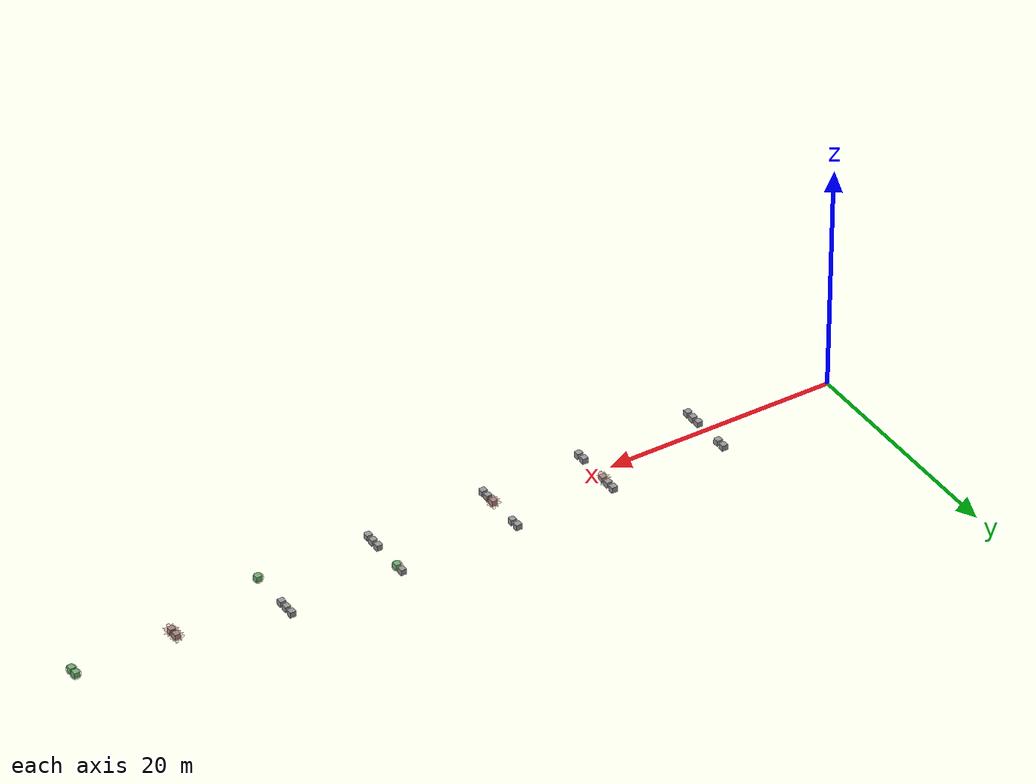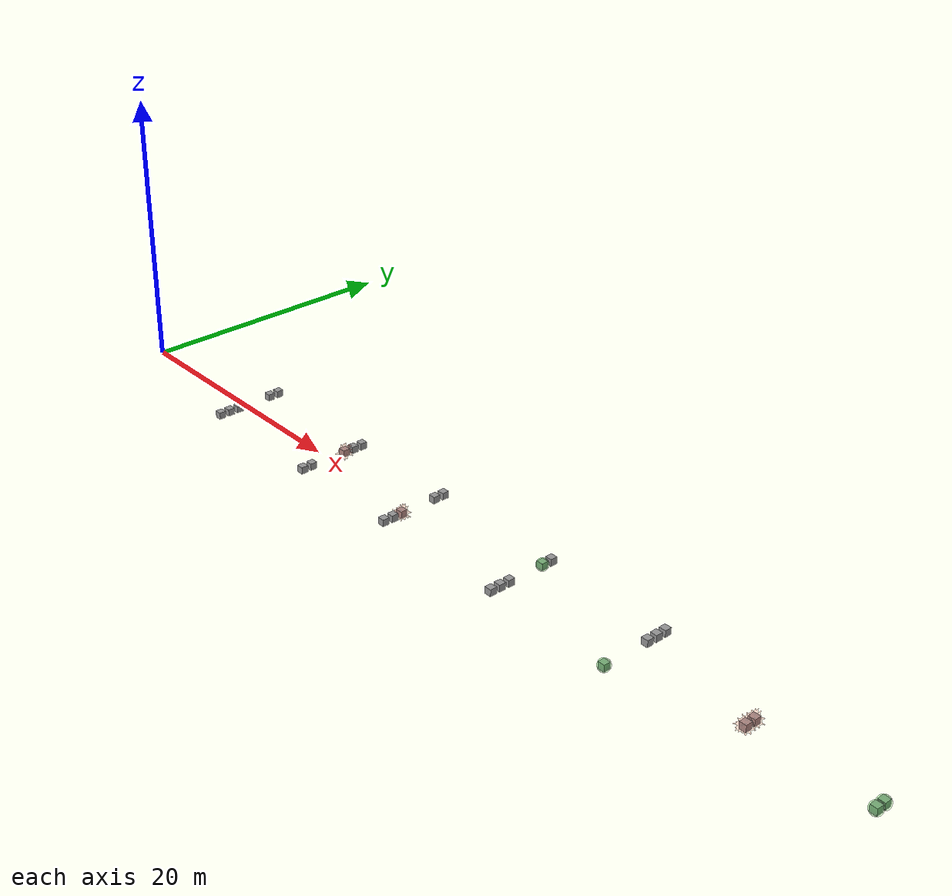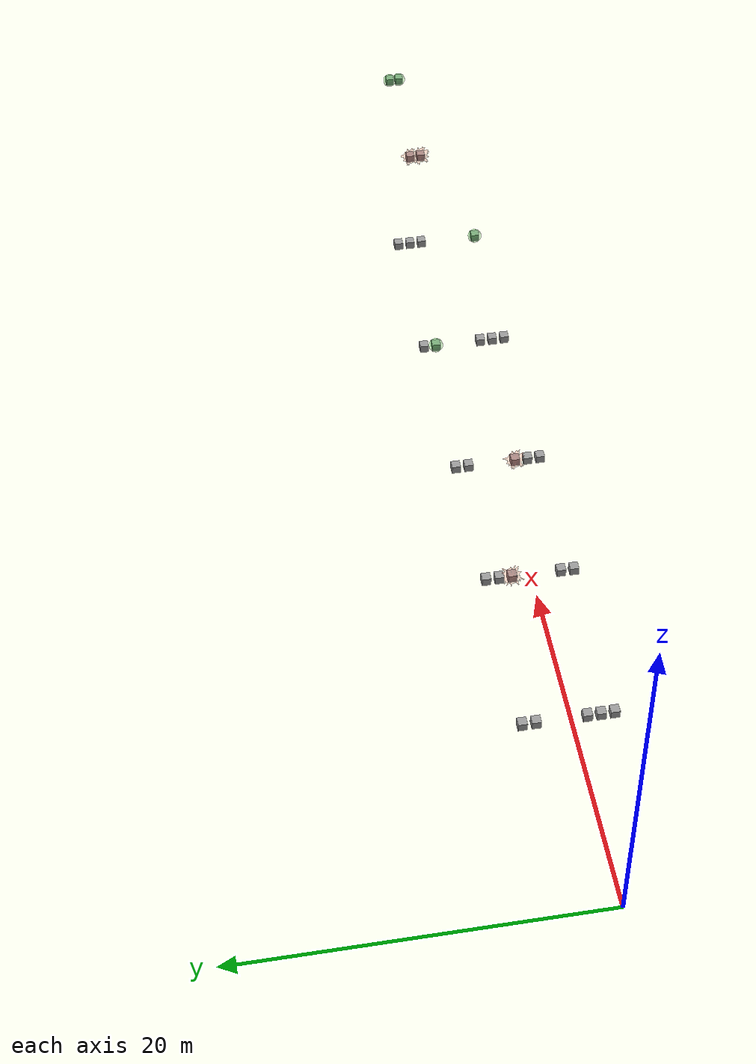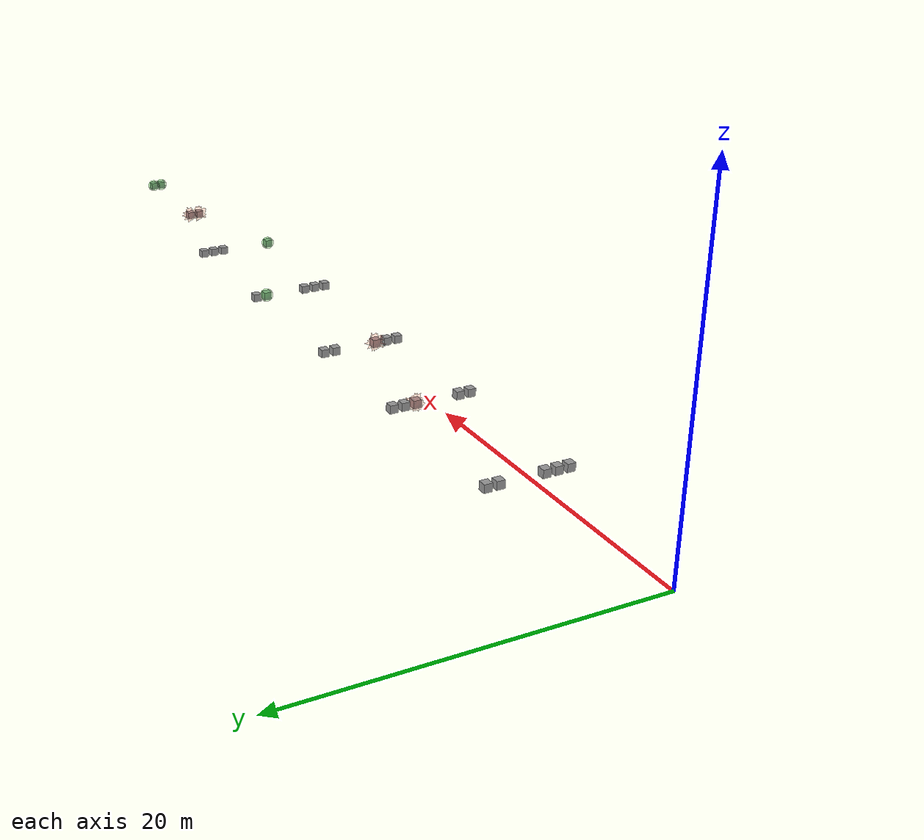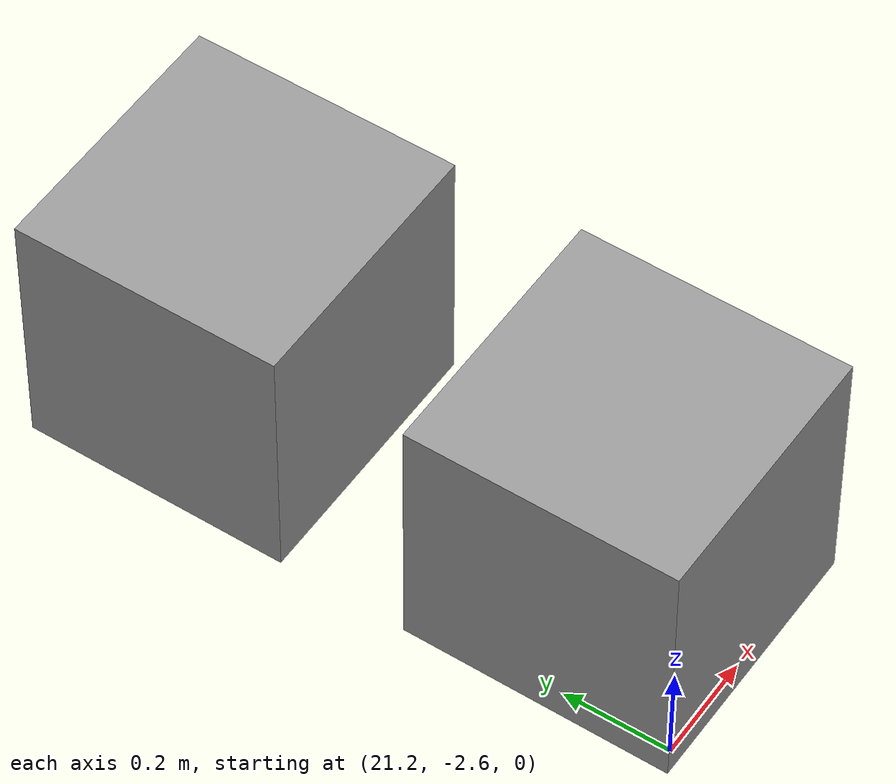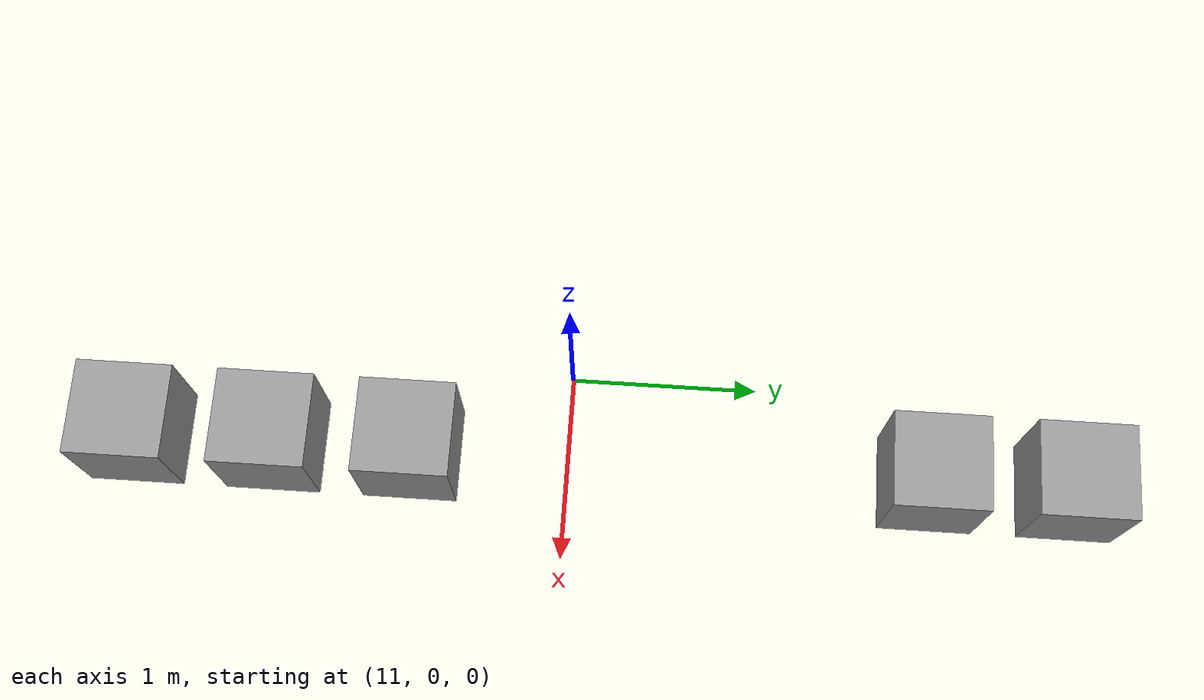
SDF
<sdf version="1.6">
 <world name="default">
  <light name="sun" type="directional">
   <pose>0 0 10 0 -0 0</pose>
   <diffuse>0.8 0.8 0.8 1</diffuse>
   <specular>0.2 0.2 0.2 1</specular>
   <attenuation>
    <range>1000</range>
    <constant>0.9</constant>
    <linear>0.01</linear>
    <quadratic>0.001</quadratic>
   </attenuation>
   <direction>-0.5 0.1 -0.9</direction>
  </light>
  <gravity>0 0 -9.8</gravity>
  <magnetic_field>6e-06 2.3e-05 -4.2e-05</magnetic_field>
  <atmosphere type="adiabatic"/>
  <physics name="default_physics" default="0" type="ode">
   <max_step_size>0.001</max_step_size>
   <real_time_factor>1</real_time_factor>
   <real_time_update_rate>1000</real_time_update_rate>
  </physics>
  <scene><ambient>0.4 0.4 0.4 1</ambient><background>0.9 0.9 0.9 1</background><shadows>1</shadows></scene>
  <spherical_coordinates>
   <surface_model>EARTH_WGS84</surface_model>
   <latitude_deg>0</latitude_deg>
   <longitude_deg>0</longitude_deg>
   <elevation>0</elevation>
   <heading_deg>0</heading_deg>
  </spherical_coordinates>
  <model name="trap_cont_4_n">
   <static>0</static>
   <static>0</static>
   <link name="normal_cue_1::vis_cue_normal">
    <inertial>
     <mass>1</mass>
     <inertia>
      <ixx>0.166667</ixx>
      <ixy>0</ixy>
      <ixz>0</ixz>
      <iyy>0.166667</iyy>
      <iyz>0</iyz>
      <izz>0.166667</izz>
     </inertia>
    </inertial>
    <collision name="collision"><geometry><box><size>0.5 0.5 0.5</size></box></geometry></collision>
    <visual name="box_visual">
     <geometry><box><size>0.5 0.5 0.5</size></box></geometry>
     <material>
      <script><name>Gazebo/Grey</name><uri>file://media/materials/scripts/gazebo.material</uri></script>
     </material>
    </visual>
    <pose>0 -2.48 0.25 0 -0 0</pose>
   </link>
   <static>0</static>
   <link name="normal_cue_2::vis_cue_normal">
    <inertial>
     <mass>1</mass>
     <inertia>
      <ixx>0.166667</ixx>
      <ixy>0</ixy>
      <ixz>0</ixz>
      <iyy>0.166667</iyy>
      <iyz>0</iyz>
      <izz>0.166667</izz>
     </inertia>
    </inertial>
    <collision name="collision"><geometry><box><size>0.5 0.5 0.5</size></box></geometry></collision>
    <visual name="box_visual">
     <geometry><box><size>0.5 0.5 0.5</size></box></geometry>
     <material>
      <script><name>Gazebo/Grey</name><uri>file://media/materials/scripts/gazebo.material</uri></script>
     </material>
    </visual>
    <pose>0 -1.745 0.25 0 -0 0</pose>
   </link>
   <static>0</static>
   <link name="normal_cue_3::vis_cue_normal">
    <inertial>
     <mass>1</mass>
     <inertia>
      <ixx>0.166667</ixx>
      <ixy>0</ixy>
      <ixz>0</ixz>
      <iyy>0.166667</iyy>
      <iyz>0</iyz>
      <izz>0.166667</izz>
     </inertia>
    </inertial>
    <collision name="collision"><geometry><box><size>0.5 0.5 0.5</size></box></geometry></collision>
    <visual name="box_visual">
     <geometry><box><size>0.5 0.5 0.5</size></box></geometry>
     <material>
      <script><name>Gazebo/Grey</name><uri>file://media/materials/scripts/gazebo.material</uri></script>
     </material>
    </visual>
    <pose>0 -1.01 0.25 0 -0 0</pose>
   </link>
   <static>0</static>
   <link name="normal_cue_4::vis_cue_normal">
    <inertial>
     <mass>1</mass>
     <inertia>
      <ixx>0.166667</ixx>
      <ixy>0</ixy>
      <ixz>0</ixz>
      <iyy>0.166667</iyy>
      <iyz>0</iyz>
      <izz>0.166667</izz>
     </inertia>
    </inertial>
    <collision name="collision"><geometry><box><size>0.5 0.5 0.5</size></box></geometry></collision>
    <visual name="box_visual">
     <geometry><box><size>0.5 0.5 0.5</size></box></geometry>
     <material>
      <script><name>Gazebo/Grey</name><uri>file://media/materials/scripts/gazebo.material</uri></script>
     </material>
    </visual>
    <pose>0 1.74 0.25 0 -0 0</pose>
   </link>
   <static>0</static>
   <link name="normal_cue_5::vis_cue_normal">
    <inertial>
     <mass>1</mass>
     <inertia>
      <ixx>0.166667</ixx>
      <ixy>0</ixy>
      <ixz>0</ixz>
      <iyy>0.166667</iyy>
      <iyz>0</iyz>
      <izz>0.166667</izz>
     </inertia>
    </inertial>
    <collision name="collision"><geometry><box><size>0.5 0.5 0.5</size></box></geometry></collision>
    <visual name="box_visual">
     <geometry><box><size>0.5 0.5 0.5</size></box></geometry>
     <material>
      <script><name>Gazebo/Grey</name><uri>file://media/materials/scripts/gazebo.material</uri></script>
     </material>
    </visual>
    <pose>0 2.48 0.25 0 -0 0</pose>
   </link>
   <pose>11.4717 0.179901 1.1e-05 7e-06 -7e-06 0</pose>
  </model>
  <model name="trap_cont_4_r_2">
   <static>0</static>
   <static>0</static>
   <link name="normal_cue_1::vis_cue_normal">
    <inertial>
     <mass>1</mass>
     <inertia>
      <ixx>0.166667</ixx>
      <ixy>0</ixy>
      <ixz>0</ixz>
      <iyy>0.166667</iyy>
      <iyz>0</iyz>
      <izz>0.166667</izz>
     </inertia>
    </inertial>
    <collision name="collision"><geometry><box><size>0.5 0.5 0.5</size></box></geometry></collision>
    <visual name="box_visual">
     <geometry><box><size>0.5 0.5 0.5</size></box></geometry>
     <material>
      <script><name>Gazebo/Grey</name><uri>file://media/materials/scripts/gazebo.material</uri></script>
     </material>
    </visual>
    <pose>0 -2.48 0.25 0 -0 0</pose>
   </link>
   <static>0</static>
   <link name="normal_cue_2::vis_cue_normal">
    <inertial>
     <mass>1</mass>
     <inertia>
      <ixx>0.166667</ixx>
      <ixy>0</ixy>
      <ixz>0</ixz>
      <iyy>0.166667</iyy>
      <iyz>0</iyz>
      <izz>0.166667</izz>
     </inertia>
    </inertial>
    <collision name="collision"><geometry><box><size>0.5 0.5 0.5</size></box></geometry></collision>
    <visual name="box_visual">
     <geometry><box><size>0.5 0.5 0.5</size></box></geometry>
     <material>
      <script><name>Gazebo/Grey</name><uri>file://media/materials/scripts/gazebo.material</uri></script>
     </material>
    </visual>
    <pose>0 -1.745 0.25 0 -0 0</pose>
   </link>
   <static>0</static>
   <link name="repelling_cue_0::vis_cue_repel">
    <inertial>
     <mass>1</mass>
     <inertia>
      <ixx>0.166667</ixx>
      <ixy>0</ixy>
      <ixz>0</ixz>
      <iyy>0.166667</iyy>
      <iyz>0</iyz>
      <izz>0.166667</izz>
     </inertia>
    </inertial>
    <collision name="collision"><geometry><box><size>0.5 0.5 0.5</size></box></geometry></collision>
    <visual name="box_visual">
     <geometry><box><size>0.5 0.5 0.5</size></box></geometry>
     <material>
      <script><name>Gazebo/Grey</name><uri>file://media/materials/scripts/gazebo.material</uri></script>
     </material>
    </visual>
    <visual name="cue_visual">
     <geometry><mesh><uri>model://repelling_cue_2.dae</uri><scale>0.85 0.85 0.85</scale></mesh></geometry>
     <material>
      <ambient>1 0.3 0.2 0.2</ambient>
      <diffuse>1 0.3 0.2 0.2</diffuse>
      <specular>1 0.3 0.2 0.5</specular>
      <emissive>0.5 0 0 0.1</emissive>
     </material>
    </visual>
    <pose>0 -1.01 0.25 0 -0 0</pose>
   </link>
   <static>0</static>
   <link name="normal_cue_3::vis_cue_normal">
    <inertial>
     <mass>1</mass>
     <inertia>
      <ixx>0.166667</ixx>
      <ixy>0</ixy>
      <ixz>0</ixz>
      <iyy>0.166667</iyy>
      <iyz>0</iyz>
      <izz>0.166667</izz>
     </inertia>
    </inertial>
    <collision name="collision"><geometry><box><size>0.5 0.5 0.5</size></box></geometry></collision>
    <visual name="box_visual">
     <geometry><box><size>0.5 0.5 0.5</size></box></geometry>
     <material>
      <script><name>Gazebo/Grey</name><uri>file://media/materials/scripts/gazebo.material</uri></script>
     </material>
    </visual>
    <pose>0 1.74 0.25 0 -0 0</pose>
   </link>
   <static>0</static>
   <link name="normal_cue_4::vis_cue_normal">
    <inertial>
     <mass>1</mass>
     <inertia>
      <ixx>0.166667</ixx>
      <ixy>0</ixy>
      <ixz>0</ixz>
      <iyy>0.166667</iyy>
      <iyz>0</iyz>
      <izz>0.166667</izz>
     </inertia>
    </inertial>
    <collision name="collision"><geometry><box><size>0.5 0.5 0.5</size></box></geometry></collision>
    <visual name="box_visual">
     <geometry><box><size>0.5 0.5 0.5</size></box></geometry>
     <material>
      <script><name>Gazebo/Grey</name><uri>file://media/materials/scripts/gazebo.material</uri></script>
     </material>
    </visual>
    <pose>0 2.48 0.25 0 -0 0</pose>
   </link>
   <pose>21.435 0.10835 1.4e-05 7e-06 -7e-06 3.1328</pose>
  </model>
  <model name="trap_cont_4_r_2_0">
   <static>0</static>
   <static>0</static>
   <link name="normal_cue_1::vis_cue_normal">
    <inertial>
     <mass>1</mass>
     <inertia>
      <ixx>0.166667</ixx>
      <ixy>0</ixy>
      <ixz>0</ixz>
      <iyy>0.166667</iyy>
      <iyz>0</iyz>
      <izz>0.166667</izz>
     </inertia>
    </inertial>
    <collision name="collision"><geometry><box><size>0.5 0.5 0.5</size></box></geometry></collision>
    <visual name="box_visual">
     <geometry><box><size>0.5 0.5 0.5</size></box></geometry>
     <material>
      <script><name>Gazebo/Grey</name><uri>file://media/materials/scripts/gazebo.material</uri></script>
     </material>
    </visual>
    <pose>0 -2.48 0.25 0 -0 0</pose>
   </link>
   <static>0</static>
   <link name="normal_cue_2::vis_cue_normal">
    <inertial>
     <mass>1</mass>
     <inertia>
      <ixx>0.166667</ixx>
      <ixy>0</ixy>
      <ixz>0</ixz>
      <iyy>0.166667</iyy>
      <iyz>0</iyz>
      <izz>0.166667</izz>
     </inertia>
    </inertial>
    <collision name="collision"><geometry><box><size>0.5 0.5 0.5</size></box></geometry></collision>
    <visual name="box_visual">
     <geometry><box><size>0.5 0.5 0.5</size></box></geometry>
     <material>
      <script><name>Gazebo/Grey</name><uri>file://media/materials/scripts/gazebo.material</uri></script>
     </material>
    </visual>
    <pose>0 -1.745 0.25 0 -0 0</pose>
   </link>
   <static>0</static>
   <link name="repelling_cue_0::vis_cue_repel">
    <inertial>
     <mass>1</mass>
     <inertia>
      <ixx>0.166667</ixx>
      <ixy>0</ixy>
      <ixz>0</ixz>
      <iyy>0.166667</iyy>
      <iyz>0</iyz>
      <izz>0.166667</izz>
     </inertia>
    </inertial>
    <collision name="collision"><geometry><box><size>0.5 0.5 0.5</size></box></geometry></collision>
    <visual name="box_visual">
     <geometry><box><size>0.5 0.5 0.5</size></box></geometry>
     <material>
      <script><name>Gazebo/Grey</name><uri>file://media/materials/scripts/gazebo.material</uri></script>
     </material>
    </visual>
    <visual name="cue_visual">
     <geometry><mesh><uri>model://repelling_cue_2.dae</uri><scale>0.85 0.85 0.85</scale></mesh></geometry>
     <material>
      <ambient>1 0.3 0.2 0.2</ambient>
      <diffuse>1 0.3 0.2 0.2</diffuse>
      <specular>1 0.3 0.2 0.5</specular>
      <emissive>0.5 0 0 0.1</emissive>
     </material>
    </visual>
    <pose>0 -1.01 0.25 0 -0 0</pose>
   </link>
   <static>0</static>
   <link name="normal_cue_3::vis_cue_normal">
    <inertial>
     <mass>1</mass>
     <inertia>
      <ixx>0.166667</ixx>
      <ixy>0</ixy>
      <ixz>0</ixz>
      <iyy>0.166667</iyy>
      <iyz>0</iyz>
      <izz>0.166667</izz>
     </inertia>
    </inertial>
    <collision name="collision"><geometry><box><size>0.5 0.5 0.5</size></box></geometry></collision>
    <visual name="box_visual">
     <geometry><box><size>0.5 0.5 0.5</size></box></geometry>
     <material>
      <script><name>Gazebo/Grey</name><uri>file://media/materials/scripts/gazebo.material</uri></script>
     </material>
    </visual>
    <pose>0 1.74 0.25 0 -0 0</pose>
   </link>
   <static>0</static>
   <link name="normal_cue_4::vis_cue_normal">
    <inertial>
     <mass>1</mass>
     <inertia>
      <ixx>0.166667</ixx>
      <ixy>0</ixy>
      <ixz>0</ixz>
      <iyy>0.166667</iyy>
      <iyz>0</iyz>
      <izz>0.166667</izz>
     </inertia>
    </inertial>
    <collision name="collision"><geometry><box><size>0.5 0.5 0.5</size></box></geometry></collision>
    <visual name="box_visual">
     <geometry><box><size>0.5 0.5 0.5</size></box></geometry>
     <material>
      <script><name>Gazebo/Grey</name><uri>file://media/materials/scripts/gazebo.material</uri></script>
     </material>
    </visual>
    <pose>0 2.48 0.25 0 -0 0</pose>
   </link>
   <pose>30.0609 0.167992 1.1e-05 7e-06 -7e-06 0</pose>
  </model>
  <model name="trap_cont_4_a_1">
   <static>0</static>
   <static>0</static>
   <link name="normal_cue_1::vis_cue_normal">
    <inertial>
     <mass>1</mass>
     <inertia>
      <ixx>0.166667</ixx>
      <ixy>0</ixy>
      <ixz>0</ixz>
      <iyy>0.166667</iyy>
      <iyz>0</iyz>
      <izz>0.166667</izz>
     </inertia>
    </inertial>
    <collision name="collision"><geometry><box><size>0.5 0.5 0.5</size></box></geometry></collision>
    <visual name="box_visual">
     <geometry><box><size>0.5 0.5 0.5</size></box></geometry>
     <material>
      <script><name>Gazebo/Grey</name><uri>file://media/materials/scripts/gazebo.material</uri></script>
     </material>
    </visual>
    <pose>0 -2.48 0.25 0 -0 0</pose>
   </link>
   <static>0</static>
   <link name="normal_cue_2::vis_cue_normal">
    <inertial>
     <mass>1</mass>
     <inertia>
      <ixx>0.166667</ixx>
      <ixy>0</ixy>
      <ixz>0</ixz>
      <iyy>0.166667</iyy>
      <iyz>0</iyz>
      <izz>0.166667</izz>
     </inertia>
    </inertial>
    <collision name="collision"><geometry><box><size>0.5 0.5 0.5</size></box></geometry></collision>
    <visual name="box_visual">
     <geometry><box><size>0.5 0.5 0.5</size></box></geometry>
     <material>
      <script><name>Gazebo/Grey</name><uri>file://media/materials/scripts/gazebo.material</uri></script>
     </material>
    </visual>
    <pose>0 -1.745 0.25 0 -0 0</pose>
   </link>
   <static>0</static>
   <link name="normal_cue_3::vis_cue_normal">
    <inertial>
     <mass>1</mass>
     <inertia>
      <ixx>0.166667</ixx>
      <ixy>0</ixy>
      <ixz>0</ixz>
      <iyy>0.166667</iyy>
      <iyz>0</iyz>
      <izz>0.166667</izz>
     </inertia>
    </inertial>
    <collision name="collision"><geometry><box><size>0.5 0.5 0.5</size></box></geometry></collision>
    <visual name="box_visual">
     <geometry><box><size>0.5 0.5 0.5</size></box></geometry>
     <material>
      <script><name>Gazebo/Grey</name><uri>file://media/materials/scripts/gazebo.material</uri></script>
     </material>
    </visual>
    <pose>0 -1.01 0.25 0 -0 0</pose>
   </link>
   <static>0</static>
   <link name="attracting_cue_0::vis_cue_attract">
    <inertial>
     <mass>1</mass>
     <inertia>
      <ixx>0.166667</ixx>
      <ixy>0</ixy>
      <ixz>0</ixz>
      <iyy>0.166667</iyy>
      <iyz>0</iyz>
      <izz>0.166667</izz>
     </inertia>
    </inertial>
    <collision name="collision"><geometry><box><size>0.5 0.5 0.5</size></box></geometry></collision>
    <visual name="box_visual">
     <geometry><box><size>0.5 0.5 0.5</size></box></geometry>
     <material>
      <script><name>Gazebo/Grey</name><uri>file://media/materials/scripts/gazebo.material</uri></script>
     </material>
    </visual>
    <visual name="cue_visual">
     <geometry>
      <mesh><uri>model://vis_cue_attract/meshes/sphere.stl</uri><scale>0.85 0.85 0.85</scale></mesh>
     </geometry>
     <material>
      <ambient>0 1 0 0.15</ambient>
      <diffuse>0 1 0 0.15</diffuse>
      <specular>0 1 0 0.15</specular>
      <emissive>0 0 0 0</emissive>
     </material>
    </visual>
    <pose>0 1.74 0.25 0 -0 0</pose>
   </link>
   <static>0</static>
   <link name="normal_cue_4::vis_cue_normal">
    <inertial>
     <mass>1</mass>
     <inertia>
      <ixx>0.166667</ixx>
      <ixy>0</ixy>
      <ixz>0</ixz>
      <iyy>0.166667</iyy>
      <iyz>0</iyz>
      <izz>0.166667</izz>
     </inertia>
    </inertial>
    <collision name="collision"><geometry><box><size>0.5 0.5 0.5</size></box></geometry></collision>
    <visual name="box_visual">
     <geometry><box><size>0.5 0.5 0.5</size></box></geometry>
     <material>
      <script><name>Gazebo/Grey</name><uri>file://media/materials/scripts/gazebo.material</uri></script>
     </material>
    </visual>
    <pose>0 2.48 0.25 0 -0 0</pose>
   </link>
   <pose>40.2553 0.202155 -2.1e-05 -7e-06 7e-06 0</pose>
  </model>
  <model name="trap_cont_1_attr_m">
   <static>0</static>
   <static>0</static>
   <link name="attracting_cue_0::vis_cue_attract">
    <inertial>
     <mass>1</mass>
     <inertia>
      <ixx>0.166667</ixx>
      <ixy>0</ixy>
      <ixz>0</ixz>
      <iyy>0.166667</iyy>
      <iyz>0</iyz>
      <izz>0.166667</izz>
     </inertia>
    </inertial>
    <collision name="collision"><geometry><box><size>0.5 0.5 0.5</size></box></geometry></collision>
    <visual name="box_visual">
     <geometry><box><size>0.5 0.5 0.5</size></box></geometry>
     <material>
      <script><name>Gazebo/Grey</name><uri>file://media/materials/scripts/gazebo.material</uri></script>
     </material>
    </visual>
    <visual name="cue_visual">
     <geometry>
      <mesh><uri>model://vis_cue_attract/meshes/sphere.stl</uri><scale>0.85 0.85 0.85</scale></mesh>
     </geometry>
     <material>
      <ambient>0 1 0 0.15</ambient>
      <diffuse>0 1 0 0.15</diffuse>
      <specular>0 1 0 0.15</specular>
      <emissive>0 0 0 0</emissive>
     </material>
    </visual>
    <pose>0 -2.48 0.25 0 -0 0</pose>
   </link>
   <static>0</static>
   <link name="normal_cue_0::vis_cue_normal">
    <inertial>
     <mass>1</mass>
     <inertia>
      <ixx>0.166667</ixx>
      <ixy>0</ixy>
      <ixz>0</ixz>
      <iyy>0.166667</iyy>
      <iyz>0</iyz>
      <izz>0.166667</izz>
     </inertia>
    </inertial>
    <collision name="collision"><geometry><box><size>0.5 0.5 0.5</size></box></geometry></collision>
    <visual name="box_visual">
     <geometry><box><size>0.5 0.5 0.5</size></box></geometry>
     <material>
      <script><name>Gazebo/Grey</name><uri>file://media/materials/scripts/gazebo.material</uri></script>
     </material>
    </visual>
    <pose>0 1.01 0.25 0 -0 0</pose>
   </link>
   <static>0</static>
   <link name="normal_cue_1::vis_cue_normal">
    <inertial>
     <mass>1</mass>
     <inertia>
      <ixx>0.166667</ixx>
      <ixy>0</ixy>
      <ixz>0</ixz>
      <iyy>0.166667</iyy>
      <iyz>0</iyz>
      <izz>0.166667</izz>
     </inertia>
    </inertial>
    <collision name="collision"><geometry><box><size>0.5 0.5 0.5</size></box></geometry></collision>
    <visual name="box_visual">
     <geometry><box><size>0.5 0.5 0.5</size></box></geometry>
     <material>
      <script><name>Gazebo/Grey</name><uri>file://media/materials/scripts/gazebo.material</uri></script>
     </material>
    </visual>
    <pose>0 1.745 0.25 0 -0 0</pose>
   </link>
   <static>0</static>
   <link name="normal_cue_2::vis_cue_normal">
    <inertial>
     <mass>1</mass>
     <inertia>
      <ixx>0.166667</ixx>
      <ixy>0</ixy>
      <ixz>0</ixz>
      <iyy>0.166667</iyy>
      <iyz>0</iyz>
      <izz>0.166667</izz>
     </inertia>
    </inertial>
    <collision name="collision"><geometry><box><size>0.5 0.5 0.5</size></box></geometry></collision>
    <visual name="box_visual">
     <geometry><box><size>0.5 0.5 0.5</size></box></geometry>
     <material>
      <script><name>Gazebo/Grey</name><uri>file://media/materials/scripts/gazebo.material</uri></script>
     </material>
    </visual>
    <pose>0 2.48 0.25 0 -0 0</pose>
   </link>
   <pose>49.8096 0.145045 -2.1e-05 -7e-06 7e-06 0</pose>
  </model>
  <model name="vis_cue_repel">
   <static>0</static>
   <pose>58.3645 0.37962 0.249997 -7e-06 7e-06 0</pose>
   <link name="vis_cue_repel">
    <inertial>
     <mass>1</mass>
     <inertia>
      <ixx>0.166667</ixx>
      <ixy>0</ixy>
      <ixz>0</ixz>
      <iyy>0.166667</iyy>
      <iyz>0</iyz>
      <izz>0.166667</izz>
     </inertia>
    </inertial>
    <collision name="collision"><geometry><box><size>0.5 0.5 0.5</size></box></geometry></collision>
    <visual name="box_visual">
     <geometry><box><size>0.5 0.5 0.5</size></box></geometry>
     <material>
      <script><name>Gazebo/Grey</name><uri>file://media/materials/scripts/gazebo.material</uri></script>
     </material>
    </visual>
    <visual name="cue_visual">
     <geometry><mesh><uri>model://repelling_cue_2.dae</uri><scale>0.85 0.85 0.85</scale></mesh></geometry>
     <material>
      <ambient>1 0.3 0.2 0.2</ambient>
      <diffuse>1 0.3 0.2 0.2</diffuse>
      <specular>1 0.3 0.2 0.5</specular>
      <emissive>0.5 0 0 0.1</emissive>
     </material>
    </visual>
   </link>
  </model>
  <model name="vis_cue_repel_0">
   <static>0</static>
   <pose>58.3744 -0.325347 0.249994 7e-06 -7e-06 0</pose>
   <link name="vis_cue_repel">
    <inertial>
     <mass>1</mass>
     <inertia>
      <ixx>0.166667</ixx>
      <ixy>0</ixy>
      <ixz>0</ixz>
      <iyy>0.166667</iyy>
      <iyz>0</iyz>
      <izz>0.166667</izz>
     </inertia>
    </inertial>
    <collision name="collision"><geometry><box><size>0.5 0.5 0.5</size></box></geometry></collision>
    <visual name="box_visual">
     <geometry><box><size>0.5 0.5 0.5</size></box></geometry>
     <material>
      <script><name>Gazebo/Grey</name><uri>file://media/materials/scripts/gazebo.material</uri></script>
     </material>
    </visual>
    <visual name="cue_visual">
     <geometry><mesh><uri>model://repelling_cue_2.dae</uri><scale>0.85 0.85 0.85</scale></mesh></geometry>
     <material>
      <ambient>1 0.3 0.2 0.2</ambient>
      <diffuse>1 0.3 0.2 0.2</diffuse>
      <specular>1 0.3 0.2 0.5</specular>
      <emissive>0.5 0 0 0.1</emissive>
     </material>
    </visual>
   </link>
  </model>
  <model name="vis_cue_attract">
   <static>0</static>
   <pose>66.8227 0.329052 0.249992 -3e-06 3e-06 0</pose>
   <link name="vis_cue_attract">
    <inertial>
     <mass>1</mass>
     <inertia>
      <ixx>0.166667</ixx>
      <ixy>0</ixy>
      <ixz>0</ixz>
      <iyy>0.166667</iyy>
      <iyz>0</iyz>
      <izz>0.166667</izz>
     </inertia>
    </inertial>
    <collision name="collision"><geometry><box><size>0.5 0.5 0.5</size></box></geometry></collision>
    <visual name="box_visual">
     <geometry><box><size>0.5 0.5 0.5</size></box></geometry>
     <material>
      <script><name>Gazebo/Grey</name><uri>file://media/materials/scripts/gazebo.material</uri></script>
     </material>
    </visual>
    <visual name="cue_visual">
     <geometry>
      <mesh><uri>model://vis_cue_attract/meshes/sphere.stl</uri><scale>0.85 0.85 0.85</scale></mesh>
     </geometry>
     <material>
      <ambient>0 1 0 0.15</ambient>
      <diffuse>0 1 0 0.15</diffuse>
      <specular>0 1 0 0.15</specular>
      <emissive>0 0 0 0</emissive>
     </material>
    </visual>
   </link>
  </model>
  <model name="vis_cue_attract_0">
   <static>0</static>
   <pose>66.8251 -0.305058 0.249994 7e-06 -7e-06 0</pose>
   <link name="vis_cue_attract">
    <inertial>
     <mass>1</mass>
     <inertia>
      <ixx>0.166667</ixx>
      <ixy>0</ixy>
      <ixz>0</ixz>
      <iyy>0.166667</iyy>
      <iyz>0</iyz>
      <izz>0.166667</izz>
     </inertia>
    </inertial>
    <collision name="collision"><geometry><box><size>0.5 0.5 0.5</size></box></geometry></collision>
    <visual name="box_visual">
     <geometry><box><size>0.5 0.5 0.5</size></box></geometry>
     <material>
      <script><name>Gazebo/Grey</name><uri>file://media/materials/scripts/gazebo.material</uri></script>
     </material>
    </visual>
    <visual name="cue_visual">
     <geometry>
      <mesh><uri>model://vis_cue_attract/meshes/sphere.stl</uri><scale>0.85 0.85 0.85</scale></mesh>
     </geometry>
     <material>
      <ambient>0 1 0 0.15</ambient>
      <diffuse>0 1 0 0.15</diffuse>
      <specular>0 1 0 0.15</specular>
      <emissive>0 0 0 0</emissive>
     </material>
    </visual>
   </link>
  </model>
 </world>
</sdf>
